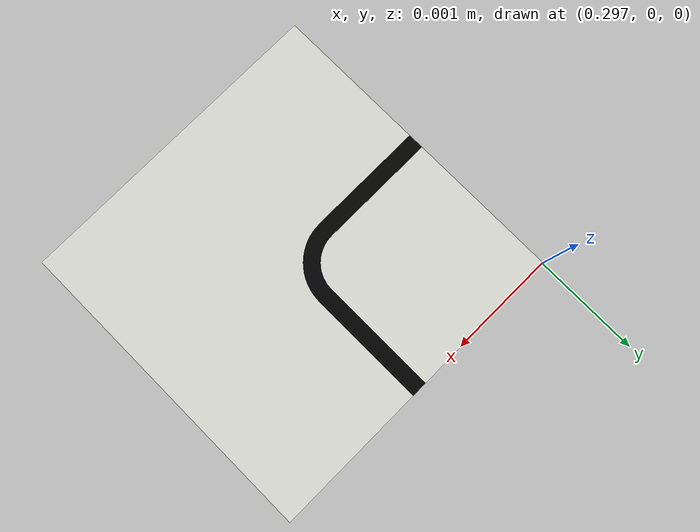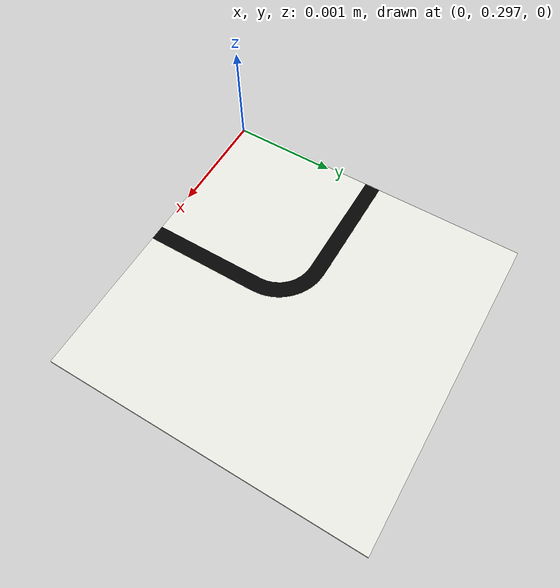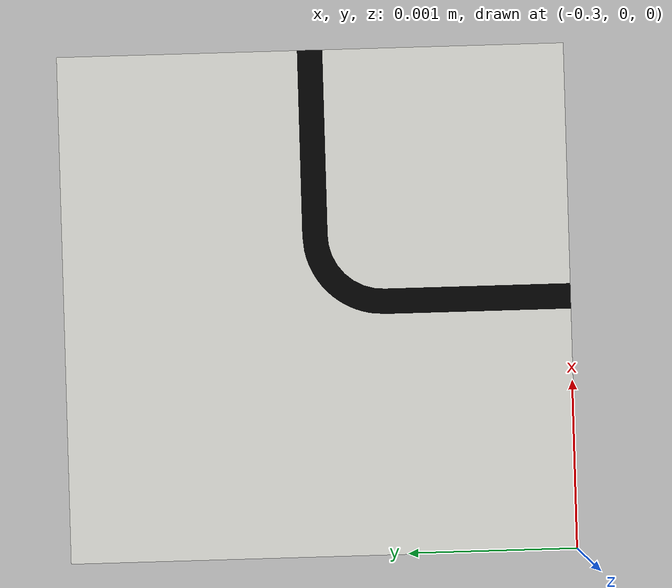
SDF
<sdf version="1.7">
 <world name="default">
  <light name="sun" type="directional">
   <cast_shadows>0</cast_shadows>
   <pose>0 0 5 0 -0 0</pose>
   <diffuse>1 1 1 1</diffuse>
   <specular>0.3 0.3 0.3 1</specular>
   <attenuation>
    <range>1000</range>
    <constant>0.9</constant>
    <linear>0.01</linear>
    <quadratic>0.001</quadratic>
   </attenuation>
   <direction>0 0 -1</direction>
  </light>
  <light name="overhead_light" type="point">
   <cast_shadows>0</cast_shadows>
   <pose>0 0 2.5 0 0 0</pose>
   <diffuse>1 1 1 1</diffuse>
   <specular>0.2 0.2 0.2 1</specular>
   <attenuation>
    <range>20</range>
    <constant>0.5</constant>
    <linear>0.05</linear>
    <quadratic>0.005</quadratic>
   </attenuation>
  </light>
  <model name="ground_plane">
   <static>1</static>
   <link name="link">
    <collision name="collision">
     <geometry><plane><normal>0 0 1</normal><size>100 100</size></plane></geometry>
     <surface>
      <contact><collide_bitmask>65535</collide_bitmask></contact>
      <friction><ode><mu>100</mu><mu2>50</mu2></ode></friction>
     </surface>
    </collision>
    <visual name="visual">
     <cast_shadows>0</cast_shadows>
     <geometry><plane><normal>0 0 1</normal><size>100 100</size></plane></geometry>
     <material>
      <script><uri>file://media/materials/scripts/gazebo.material</uri><name>Gazebo/Grey</name></script>
     </material>
    </visual>
   </link>
  </model>
  <gravity>0 0 -9.8</gravity>
  <magnetic_field>6e-06 2.3e-05 -4.2e-05</magnetic_field>
  <atmosphere type="adiabatic"/>
  <physics type="ode">
   <max_step_size>0.001</max_step_size>
   <real_time_factor>1</real_time_factor>
   <real_time_update_rate>1000</real_time_update_rate>
  </physics>
  <scene><ambient>0.6 0.6 0.6 1</ambient><background>0.7 0.7 0.7 1</background><shadows>0</shadows></scene>
  <audio><device>default</device></audio>
  <spherical_coordinates>
   <surface_model>EARTH_WGS84</surface_model>
   <latitude_deg>0</latitude_deg>
   <longitude_deg>0</longitude_deg>
   <elevation>0</elevation>
   <heading_deg>0</heading_deg>
  </spherical_coordinates>
  <model name="tile_curva">
   <static>1</static>
   <link name="tile_curva">
    <visual name="visual_tile_curva">
     <pose>0 0 0 1.5708 -0 0</pose>
     <geometry>
      <mesh><uri>/workspace/tiles/tile-curva/meshes/tile_curva.dae</uri><scale>0.01 0.01 0.01</scale></mesh>
     </geometry>
    </visual>
    <collision name="colisao_tile_curva"><geometry><box><size>0.30 0.30 0.003</size></box></geometry></collision>
   </link>
   <pose>0.0 0.30 0 0 -0 0</pose>
  </model>
  <model name="tile_curva_0">
   <static>1</static>
   <link name="tile_curva">
    <visual name="visual_tile_curva">
     <pose>0 0 0 1.5708 -0 0</pose>
     <geometry>
      <mesh><uri>/workspace/tiles/tile-curva/meshes/tile_curva.dae</uri><scale>0.01 0.01 0.01</scale></mesh>
     </geometry>
    </visual>
    <collision name="colisao_tile_curva"><geometry><box><size>0.30 0.30 0.003</size></box></geometry></collision>
   </link>
   <pose>-0.30 0.0 0 0 0 1.570796</pose>
  </model>
  <model name="tile_curva_1">
   <static>1</static>
   <link name="tile_curva">
    <visual name="visual_tile_curva">
     <pose>0 0 0 1.5708 -0 0</pose>
     <geometry>
      <mesh><uri>/workspace/tiles/tile-curva/meshes/tile_curva.dae</uri><scale>0.01 0.01 0.01</scale></mesh>
     </geometry>
    </visual>
    <collision name="colisao_tile_curva"><geometry><box><size>0.30 0.30 0.003</size></box></geometry></collision>
   </link>
   <pose>0.0 -0.30 0 0 0 3.141593</pose>
  </model>
  <model name="tile_curva_2">
   <static>1</static>
   <link name="tile_curva">
    <visual name="visual_tile_curva">
     <pose>0 0 0 1.5708 -0 0</pose>
     <geometry>
      <mesh><uri>/workspace/tiles/tile-curva/meshes/tile_curva.dae</uri><scale>0.01 0.01 0.01</scale></mesh>
     </geometry>
    </visual>
    <collision name="colisao_tile_curva"><geometry><box><size>0.30 0.30 0.003</size></box></geometry></collision>
   </link>
   <pose>0.30 0.0 0 0 0 -1.570796</pose>
  </model>
 </world>
</sdf>
